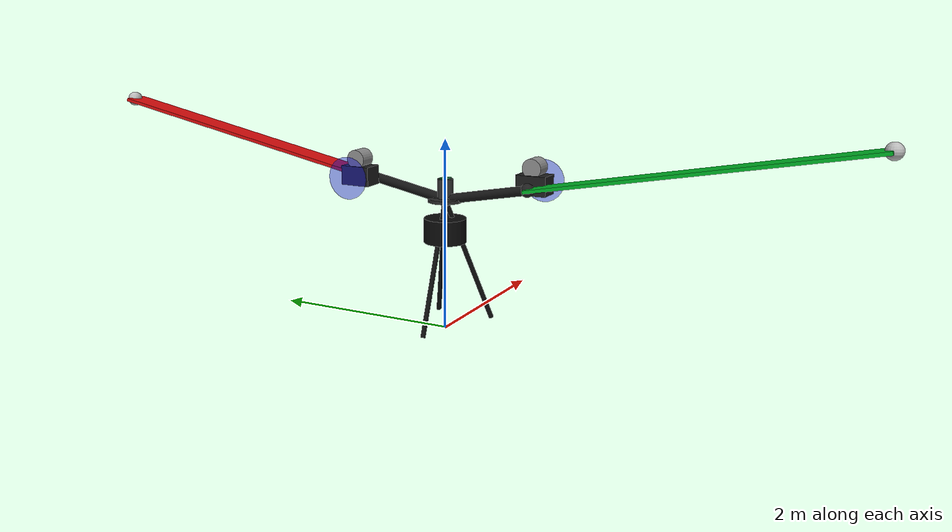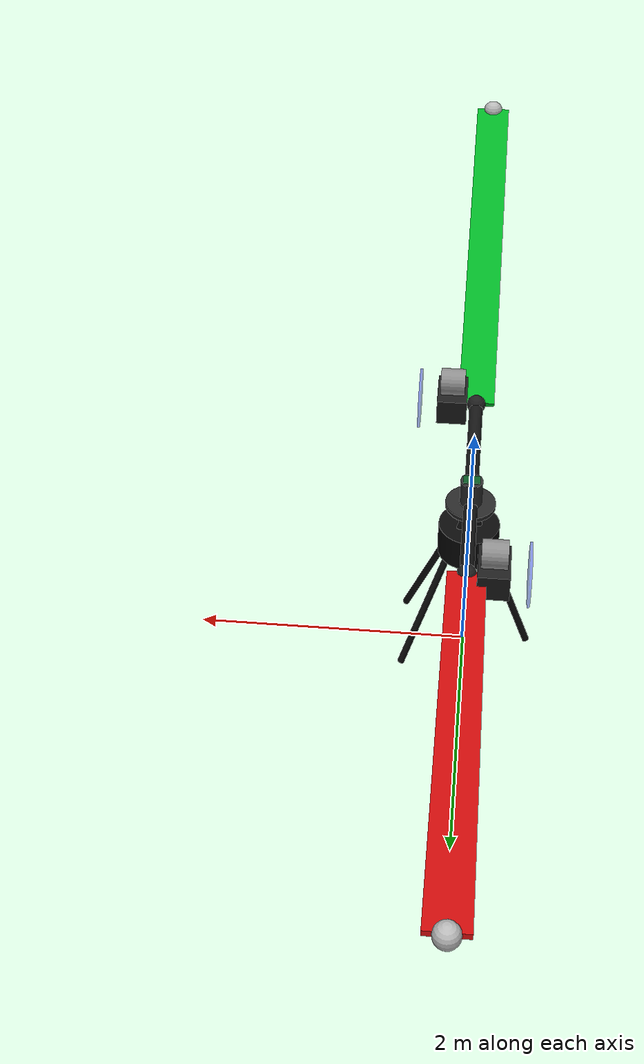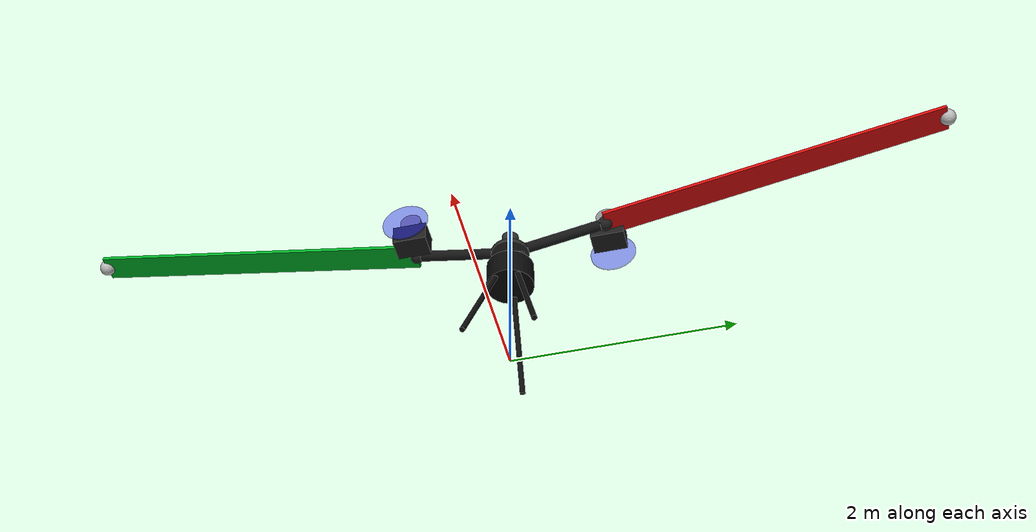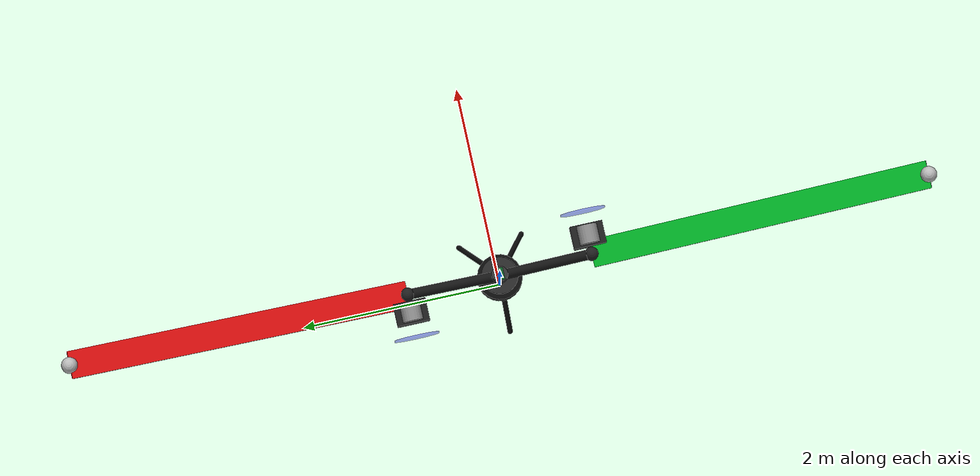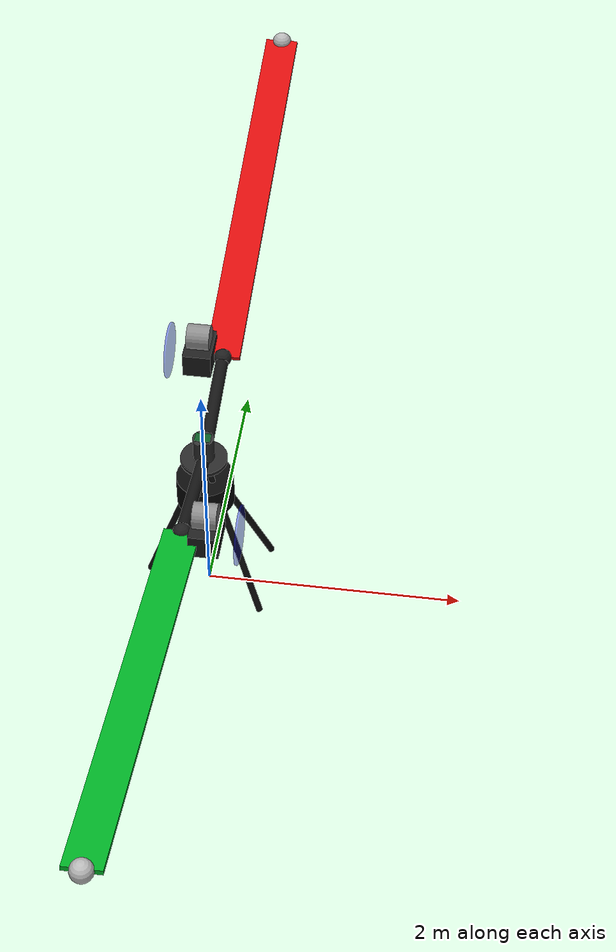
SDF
<?xml version="1.0"?>
<sdf version="1.6">
  <model name="rising_star">
    <!-- DOCUMENTATION HEADER                                                    -->
    <pose>0 0 0.86 0 0 0</pose>
    <static>false</static>

    <!-- base_link                                                              -->
    <link name="base_link">
      <pose>0 0 0 0 0 0</pose>
      <inertial>
        <mass>11.05</mass>
        <inertia>
          <ixx>8.0</ixx>
          <iyy>8.0</iyy>
          <izz>12.0</izz>
          <ixy>0.0</ixy>
          <ixz>0.0</ixz>
          <iyz>0.0</iyz>
        </inertia>
      </inertial>

      <!-- Tripod mast between base_link and rotor hub              -->
      <!-- This is fixed to base_link and visually supports rotor   -->
      <!-- area. It does not physically attach to spinning rotor_link. -->
      <collision name="tripod_mast_front_left_collision">
        <pose>0.2250 0.1600 -0.1600 0.000000 0.390870 -2.523448</pose>
        <geometry>
          <cylinder>
            <radius>0.0250</radius>
            <length>1.4493</length>
          </cylinder>
        </geometry>
        <surface>
          <contact>
            <ode>
              <min_depth>0.001</min_depth>
              <max_vel>0</max_vel>
            </ode>
          </contact>
          <friction>
            <ode />
          </friction>
        </surface>
      </collision>
      <collision name="tripod_mast_front_right_collision">
        <pose>0.2250 -0.1600 -0.1600 0.000000 0.390870 2.523448</pose>
        <geometry>
          <cylinder>
            <radius>0.0250</radius>
            <length>1.4493</length>
          </cylinder>
        </geometry>
        <surface>
          <contact>
            <ode>
              <min_depth>0.001</min_depth>
              <max_vel>0</max_vel>
            </ode>
          </contact>
          <friction>
            <ode />
          </friction>
        </surface>
      </collision>
      <collision name="tripod_mast_rear_collision">
        <pose>-0.2400 0.0000 -0.1600 0.000000 0.343969 0.000000</pose>
        <geometry>
          <cylinder>
            <radius>0.0250</radius>
            <length>1.4234</length>
          </cylinder>
        </geometry>
        <surface>
          <contact>
            <ode>
              <min_depth>0.001</min_depth>
              <max_vel>0</max_vel>
            </ode>
          </contact>
          <friction>
            <ode />
          </friction>
        </surface>
      </collision>

      <visual name="tripod_mast_front_left_visual">
        <pose>0.2250 0.1600 -0.1600 0.000000 0.390870 -2.523448</pose>
        <geometry>
          <cylinder>
            <radius>0.0250</radius>
            <length>1.4493</length>
          </cylinder>
        </geometry>
        <material>
          <ambient>0.05 0.05 0.05 1</ambient>
          <diffuse>0.05 0.05 0.05 1</diffuse>
        </material>
      </visual>
      <visual name="tripod_mast_front_right_visual">
        <pose>0.2250 -0.1600 -0.1600 0.000000 0.390870 2.523448</pose>
        <geometry>
          <cylinder>
            <radius>0.0250</radius>
            <length>1.4493</length>
          </cylinder>
        </geometry>
        <material>
          <ambient>0.05 0.05 0.05 1</ambient>
          <diffuse>0.05 0.05 0.05 1</diffuse>
        </material>
      </visual>
      <visual name="tripod_mast_rear_visual">
        <pose>-0.2400 0.0000 -0.1600 0.000000 0.343969 0.000000</pose>
        <geometry>
          <cylinder>
            <radius>0.0250</radius>
            <length>1.4234</length>
          </cylinder>
        </geometry>
        <material>
          <ambient>0.05 0.05 0.05 1</ambient>
          <diffuse>0.05 0.05 0.05 1</diffuse>
        </material>
      </visual>
      <visual name="tripod_mast_top_joint_visual">
        <pose>0.0000 0.0000 0.5500 0 0 0</pose>
        <geometry>
          <sphere>
            <radius>0.075</radius>
          </sphere>
        </geometry>
        <material>
          <ambient>0.18 0.18 0.18 1</ambient>
          <diffuse>0.18 0.18 0.18 1</diffuse>
        </material>
      </visual>

      <visual name="tripod_mast_top_plate_visual">
        <pose>0 0 0.51 0 0 0</pose>
        <geometry>
          <cylinder>
            <radius>0.18</radius>
            <length>0.035</length>
          </cylinder>
        </geometry>
        <material>
          <ambient>0.16 0.16 0.16 1</ambient>
          <diffuse>0.16 0.16 0.16 1</diffuse>
        </material>
      </visual>

      <!-- PX4 SITL sensor: IMU                                                -->
      <!--
        This sensor/plugin publishes IMU data for PX4 through the Gazebo
        mavlink_interface. The topic is /imu, matching imuSubTopic below.
      -->
      <sensor name="imu_sensor" type="imu">
        <always_on>true</always_on>
        <update_rate>100</update_rate>
        <visualize>false</visualize>
        <imu>
          <angular_velocity>
            <x>
              <noise type="gaussian">
                <mean>0.0</mean>
                <stddev>0.0003394</stddev>
                <bias_mean>0.0</bias_mean>
                <bias_stddev>3.8785e-05</bias_stddev>
              </noise>
            </x>
            <y>
              <noise type="gaussian">
                <mean>0.0</mean>
                <stddev>0.0003394</stddev>
                <bias_mean>0.0</bias_mean>
                <bias_stddev>3.8785e-05</bias_stddev>
              </noise>
            </y>
            <z>
              <noise type="gaussian">
                <mean>0.0</mean>
                <stddev>0.0003394</stddev>
                <bias_mean>0.0</bias_mean>
                <bias_stddev>3.8785e-05</bias_stddev>
              </noise>
            </z>
          </angular_velocity>
          <linear_acceleration>
            <x>
              <noise type="gaussian">
                <mean>0.0</mean>
                <stddev>0.004</stddev>
                <bias_mean>0.0</bias_mean>
                <bias_stddev>0.006</bias_stddev>
              </noise>
            </x>
            <y>
              <noise type="gaussian">
                <mean>0.0</mean>
                <stddev>0.004</stddev>
                <bias_mean>0.0</bias_mean>
                <bias_stddev>0.006</bias_stddev>
              </noise>
            </y>
            <z>
              <noise type="gaussian">
                <mean>0.0</mean>
                <stddev>0.004</stddev>
                <bias_mean>0.0</bias_mean>
                <bias_stddev>0.006</bias_stddev>
              </noise>
            </z>
          </linear_acceleration>
        </imu>
      </sensor>

    </link>

    <link name="/imu_link">
      <pose>0 0 0.694 0 0 0</pose>
      <inertial>
        <pose>0 0 0 0 0 0</pose>
        <mass>0.015</mass>
        <inertia>
          <ixx>0.00001</ixx>
          <ixy>0</ixy>
          <ixz>0</ixz>
          <iyy>0.00001</iyy>
          <iyz>0</iyz>
          <izz>0.00001</izz>
        </inertia>
      </inertial>
      <visual name="flight_controller_visual">
        <pose>0 0 0.035 0 0 0</pose>
        <geometry>
          <box>
            <size>0.12 0.08 0.025</size>
          </box>
        </geometry>
        <material>
          <ambient>0.02 0.18 0.08 1</ambient>
          <diffuse>0.04 0.35 0.14 1</diffuse>
          <specular>0.05 0.12 0.05 1</specular>
        </material>
      </visual>
    </link>

    <joint name="/imu_joint" type="fixed">
      <child>/imu_link</child>
      <!-- Rotor-hub mounted flight controller for SITL. The IMU link spins
           with rotor_link; mavlink_interface de-rotates it back into the
           body frame before sending data to stock PX4. -->
      <parent>rotor_link</parent>
    </joint>

    <!-- rotor_link                                                              -->
    <link name="rotor_link">
      <pose>0 0 0.694 0 0 0</pose>
      <inertial>
        <mass>8.0</mass>
        <inertia>
          <ixx>18.0</ixx>
          <iyy>18.0</iyy>
          <izz>35.0</izz>
          <ixy>0.0</ixy>
          <ixz>0.0</ixz>
          <iyz>0.0</iyz>
        </inertia>
      </inertial>

      <!-- Central rotor hub / teeter pivot housing. -->
      <collision name="rotor_hub_collision">
        <pose>0 0 -0.0889 0 0 0</pose>
        <geometry>
          <cylinder>
            <radius>0.08</radius>
            <length>0.25</length>
          </cylinder>
        </geometry>
      </collision>

      <visual name="rotor_hub_visual">
        <pose>0 0 -0.0889 0 0 0</pose>
        <geometry>
          <cylinder>
            <radius>0.08</radius>
            <length>0.25</length>
          </cylinder>
        </geometry>
        <material>
          <ambient>0.20 0.20 0.20 1</ambient>
          <diffuse>0.20 0.20 0.20 1</diffuse>
        </material>
      </visual>

      <!-- Central teeter pivot marker.
           This is the lower center point of the V shape:
           right beam endpoint 1 =  0.0000 0 -0.1778
           left  beam endpoint 1 =  0.0000 0 -0.1778
      -->
      <visual name="teeter_center_pivot_visual">
        <pose>0 0 -0.1778 0 0 0</pose>
        <geometry>
          <sphere>
            <radius>0.075</radius>
          </sphere>
        </geometry>
        <material>
          <ambient>0.10 0.10 0.10 1</ambient>
          <diffuse>0.10 0.10 0.10 1</diffuse>
        </material>
      </visual>

    </link>

    <!-- Physical teeter assembly.
         This link carries the blade visuals/collisions and rocks like a seesaw
         on a single hinge carried by the spinning rotor hub. -->
    <link name="teeter_beam_link">
      <pose>0 0 0.694 0 0 0</pose>
      <inertial>
        <mass>8.0</mass>
        <inertia>
          <ixx>18.0</ixx>
          <iyy>18.0</iyy>
          <izz>35.0</izz>
          <ixy>0.0</ixy>
          <ixz>0.0</ixz>
          <iyz>0.0</iyz>
        </inertia>
      </inertial>

      <!-- Left teeter beam: center pivot -> blade_2_visual root (+Y span) -->
      <collision name="teeter_beam_right_collision">
        <pose>0 0.4572 -0.0889 -1.37881010908 0 0</pose>
        <geometry>
          <cylinder>
            <radius>0.05</radius>
            <length>0.9316</length>
          </cylinder>
        </geometry>
      </collision>
      <visual name="teeter_beam_right_visual">
        <pose>0 0.4572 -0.0889 -1.37881010908 0 0</pose>
        <geometry>
          <cylinder>
            <radius>0.05</radius>
            <length>0.9316</length>
          </cylinder>
        </geometry>
        <material>
          <ambient>0.08 0.08 0.08 1</ambient>
          <diffuse>0.08 0.08 0.08 1</diffuse>
        </material>
      </visual>

      <!-- Right teeter beam: center pivot -> blade_1_visual root (-Y span) -->
      <collision name="teeter_beam_left_collision">
        <pose>0 -0.4572 -0.0889 1.37881010908 0 0</pose>
        <geometry>
          <cylinder>
            <radius>0.05</radius>
            <length>0.9316</length>
          </cylinder>
        </geometry>
      </collision>
      <visual name="teeter_beam_left_visual">
        <pose>0 -0.4572 -0.0889 1.37881010908 0 0</pose>
        <geometry>
          <cylinder>
            <radius>0.05</radius>
            <length>0.9316</length>
          </cylinder>
        </geometry>
        <material>
          <ambient>0.08 0.08 0.08 1</ambient>
          <diffuse>0.08 0.08 0.08 1</diffuse>
        </material>
      </visual>

      <!-- Optional root clamps to make the blade connection obvious. -->
      <visual name="blade_1_root_clamp_visual">
        <pose>0 -0.9144 0.0000 0 0 0</pose>
        <geometry>
          <sphere>
            <radius>0.07</radius>
          </sphere>
        </geometry>
        <material>
          <ambient>0.12 0.12 0.12 1</ambient>
          <diffuse>0.12 0.12 0.12 1</diffuse>
        </material>
      </visual>
      <visual name="blade_2_root_clamp_visual">
        <pose>0 0.9144 0.0000 0 0 0</pose>
        <geometry>
          <sphere>
            <radius>0.07</radius>
          </sphere>
        </geometry>
        <material>
          <ambient>0.12 0.12 0.12 1</ambient>
          <diffuse>0.12 0.12 0.12 1</diffuse>
        </material>
      </visual>

      <visual name="tip_weight_1_visual">
        <pose>0 -4.2055996207 0.6397443997 0 0 0</pose>
        <geometry>
          <sphere>
            <radius>0.08</radius>
          </sphere>
        </geometry>
      </visual>
      <visual name="tip_weight_2_visual">
        <pose>0 4.2055996207 0.6397443997 0 0 0</pose>
        <geometry>
          <sphere>
            <radius>0.08</radius>
          </sphere>
        </geometry>
      </visual>

      <!-- Visible GP-76 engine placeholders at 3 ft radius.
           These live on teeter_beam_link so the engines follow the blade beam. -->
      <visual name="gp76_engine_1_body_visual">
        <pose>0.18 -0.9144 0.03 0 0 -1.57079632679</pose>
        <geometry>
          <box>
            <size>0.32 0.22 0.20</size>
          </box>
        </geometry>
        <material>
          <ambient>0.12 0.12 0.12 1</ambient>
          <diffuse>0.12 0.12 0.12 1</diffuse>
        </material>
      </visual>
      <visual name="gp76_engine_1_cylinder_visual">
        <pose>0.18 -0.9144 0.20 1.57079632679 0 -1.57079632679</pose>
        <geometry>
          <cylinder>
            <radius>0.10</radius>
            <length>0.18</length>
          </cylinder>
        </geometry>
        <material>
          <ambient>0.55 0.55 0.55 1</ambient>
          <diffuse>0.55 0.55 0.55 1</diffuse>
        </material>
      </visual>
      <visual name="gp76_engine_1_prop_disc_visual">
        <pose>0.42 -0.9144 0.03 1.57079632679 0 -1.57079632679</pose>
        <geometry>
          <cylinder>
            <radius>0.22</radius>
            <length>0.015</length>
          </cylinder>
        </geometry>
        <material>
          <ambient>0.1 0.1 0.9 0.45</ambient>
          <diffuse>0.1 0.1 0.9 0.45</diffuse>
        </material>
      </visual>

      <visual name="gp76_engine_2_body_visual">
        <pose>-0.18 0.9144 0.03 0 0 1.57079632679</pose>
        <geometry>
          <box>
            <size>0.32 0.22 0.20</size>
          </box>
        </geometry>
        <material>
          <ambient>0.12 0.12 0.12 1</ambient>
          <diffuse>0.12 0.12 0.12 1</diffuse>
        </material>
      </visual>
      <visual name="gp76_engine_2_cylinder_visual">
        <pose>-0.18 0.9144 0.20 1.57079632679 0 1.57079632679</pose>
        <geometry>
          <cylinder>
            <radius>0.10</radius>
            <length>0.18</length>
          </cylinder>
        </geometry>
        <material>
          <ambient>0.55 0.55 0.55 1</ambient>
          <diffuse>0.55 0.55 0.55 1</diffuse>
        </material>
      </visual>
      <visual name="gp76_engine_2_prop_disc_visual">
        <pose>-0.42 0.9144 0.03 1.57079632679 0 1.57079632679</pose>
        <geometry>
          <cylinder>
            <radius>0.22</radius>
            <length>0.015</length>
          </cylinder>
        </geometry>
        <material>
          <ambient>0.1 0.1 0.9 0.45</ambient>
          <diffuse>0.1 0.1 0.9 0.45</diffuse>
        </material>
      </visual>
      <gravity>true</gravity>
      <self_collide>false</self_collide>
    </link>

    <link name="blade_1_pitch_link">
      <pose>0 -2.5599998103 1.0138721998 0 -0.191986 -1.57079632679</pose>
      <gravity>false</gravity>
      <self_collide>false</self_collide>
      <kinematic>true</kinematic>
      <inertial>
        <mass>0.001</mass>
        <inertia>
          <ixx>0.000001</ixx>
          <iyy>0.000001</iyy>
          <izz>0.000001</izz>
          <ixy>0.0</ixy>
          <ixz>0.0</ixz>
          <iyz>0.0</iyz>
        </inertia>
      </inertial>
      <visual name="blade_1_visual">
        <geometry>
          <box>
            <size>3.3528 0.2667 0.035</size>
          </box>
        </geometry>
        <material>
          <ambient>0.0 0.70 0.15 1</ambient>
          <diffuse>0.0 0.70 0.15 1</diffuse>
        </material>
      </visual>
    </link>

    <link name="blade_2_pitch_link">
      <pose>0 2.5599998103 1.0138721998 0 -0.191986 1.57079632679</pose>
      <gravity>false</gravity>
      <self_collide>false</self_collide>
      <kinematic>true</kinematic>
      <inertial>
        <mass>0.001</mass>
        <inertia>
          <ixx>0.000001</ixx>
          <iyy>0.000001</iyy>
          <izz>0.000001</izz>
          <ixy>0.0</ixy>
          <ixz>0.0</ixz>
          <iyz>0.0</iyz>
        </inertia>
      </inertial>
      <visual name="blade_2_visual">
        <geometry>
          <box>
            <size>3.3528 0.2667 0.035</size>
          </box>
        </geometry>
        <material>
          <ambient>0.85 0.05 0.05 1</ambient>
          <diffuse>0.85 0.05 0.05 1</diffuse>
        </material>
      </visual>
    </link>

    <!-- payload_link                                                            -->

    <link name="payload_link">
      <pose>0 0 0.194 0 0 0</pose>
      <inertial>
        <mass>0.5000000000</mass>
        <inertia>
          <ixx>0.00879482</ixx>
          <iyy>0.00879482</iyy>
          <izz>0.01221331</izz>
          <ixy>0.0</ixy>
          <ixz>0.0</ixz>
          <iyz>0.0</iyz>
        </inertia>
      </inertial>
      <collision name="payload_plate_collision">
        <geometry>
          <cylinder>
            <radius>0.2206625</radius>
            <length>0.254</length>
          </cylinder>
        </geometry>
        <surface>
          <contact>
            <ode>
              <min_depth>0.001</min_depth>
              <max_vel>0</max_vel>
            </ode>
          </contact>
          <friction>
            <ode />
          </friction>
        </surface>
      </collision>
      <visual name="payload_plate_visual">
        <geometry>
          <cylinder>
            <radius>0.2206625</radius>
            <length>0.254</length>
          </cylinder>
        </geometry>
        <material>
          <ambient>0.015 0.015 0.015 1</ambient>
          <diffuse>0.04 0.04 0.04 1</diffuse>
          <specular>0.12 0.12 0.12 1</specular>
        </material>
      </visual>
    </link>

    <joint name="payload_fixed_joint" type="fixed">
      <parent>base_link</parent>
      <child>payload_link</child>
    </joint>

    <joint name="main_rotor_joint" type="revolute">
      <parent>base_link</parent>
      <child>rotor_link</child>
      <pose>0 0 0.694 0 0 0</pose>
      <axis>
        <xyz>0 0 1</xyz>
        <limit>
          <lower>-1e16</lower>
          <upper>1e16</upper>
          <effort>10000</effort>
          <velocity>1000</velocity>
        </limit>
        <dynamics>
          <damping>0.01</damping>
          <friction>0.0</friction>
        </dynamics>
      </axis>
    </joint>

    <joint name="teeter_hinge_joint" type="revolute">
      <parent>rotor_link</parent>
      <child>teeter_beam_link</child>
      <pose>0 0 0.694 0 0 0</pose>
      <axis>
        <!-- Blade span is along rotor local Y, so the seesaw hinge axis is X. -->
        <xyz>1 0 0</xyz>
        <limit>
          <lower>-0.2617993878</lower>
          <upper>0.2617993878</upper>
          <effort>10000</effort>
          <velocity>3.14159265359</velocity>
        </limit>
        <dynamics>
          <damping>600.0</damping>
          <friction>0.0</friction>
        </dynamics>
      </axis>
    </joint>

    <plugin name="rising_star_plugin" filename="librising_star_plugin.so">
      <!-- baseLinkName:
           Name of the non-rotating vehicle body link. -->
      <baseLinkName>base_link</baseLinkName>
      <!-- rotorLinkName:
           Name of the simplified spinning rotor assembly. -->
      <rotorLinkName>rotor_link</rotorLinkName>
      <teeterBeamLinkName>teeter_beam_link</teeterBeamLinkName>
      <blade1PitchLinkName>blade_1_pitch_link</blade1PitchLinkName>
      <blade2PitchLinkName>blade_2_pitch_link</blade2PitchLinkName>
      <!-- payloadLinkName:
           Physical payload link. Its SDF inertial block is the payload physics. -->
      <payloadLinkName>payload_link</payloadLinkName>
      <!-- jointName:
           Revolute joint connecting base_link and rotor_link. -->
      <jointName>main_rotor_joint</jointName>
      <teeterHingeJointName>teeter_hinge_joint</teeterHingeJointName>

      <!-- Primary test variables -->
      <!-- targetRpm:
           If useEngineDynamics=false, this directly forces rotor RPM.
           If useEngineDynamics=true, this is only the initial RPM at spawn.
           Unit: rpm. -->
      <targetRpm>0.0</targetRpm>
      <payloadEnabled>true</payloadEnabled>
      <payloadMassLb>0.0</payloadMassLb>
      <payloadOffsetFromCogM>0 0 0.194</payloadOffsetFromCogM>
      <!-- Barbell plate dimensions used to calculate annular-cylinder inertia. -->
      <payloadOuterDiameterIn>17.375</payloadOuterDiameterIn>
      <payloadInnerDiameterIn>1.0</payloadInnerDiameterIn>
      <payloadThicknessIn>10.0</payloadThicknessIn>
      <!-- payloadDisabledScale:
           Used only for the disabled payload dummy inertia calculation.
           payloadEnabled=true intentionally ignores this value. -->
      <payloadDisabledScale>0.08</payloadDisabledScale>
      <!-- blade1PitchDeg:
           Pitch command for blade 1 in degrees.
           Design/reference value: 7.27 deg. -->
      <blade1PitchDeg>5.0</blade1PitchDeg>
      <blade2PitchDeg>5.0</blade2PitchDeg>

      <!-- Simple horizontal wind/body drag                                    -->
      <enableHorizontalWindDrag>true</enableHorizontalWindDrag>

      <windSubTopic>world_wind</windSubTopic>

      <bodyHorizontalDragCoefficient>1.1</bodyHorizontalDragCoefficient>
      <bodyHorizontalDragAreaM2>0.9</bodyHorizontalDragAreaM2>
      <payloadHorizontalDragCoefficient>1.1</payloadHorizontalDragCoefficient>
      <payloadHorizontalDragAreaM2>0.16</payloadHorizontalDragAreaM2>

      <!-- Wind drag debug:
           Prints wind and applied body/payload force vectors to the Gazebo
           terminal. Keep this off unless tuning the force scale. -->
      <printWindDragDebug>false</printWindDragDebug>
      <windDragDebugIntervalSec>1.0</windDragDebugIntervalSec>

      <!-- Rotor imbalance disturbance                                         -->
      <enableRotorImbalance>false</enableRotorImbalance>
      <!-- Force amplitude at rotorImbalanceReferenceRpm. Unit: N. -->
      <rotorImbalanceForceAtReferenceRpmN>5.0</rotorImbalanceForceAtReferenceRpmN>
      <!-- Reference RPM for the quadratic force scaling. -->
      <rotorImbalanceReferenceRpm>70.0</rotorImbalanceReferenceRpm>
      <!-- Phase offset of the imbalance force relative to plugin rotor azimuth. -->
      <rotorImbalancePhaseDeg>0.0</rotorImbalancePhaseDeg>
      <!-- Application point in base_link/model coordinates. The default is the
           main rotor hub height, so the lateral force also excites body moment. -->
      <rotorImbalanceApplicationPointM>0 0 0.694</rotorImbalanceApplicationPointM>
      <!-- Debug prints for applied imbalance force. -->
      <printRotorImbalanceDebug>false</printRotorImbalanceDebug>
      <rotorImbalanceDebugIntervalSec>1.0</rotorImbalanceDebugIntervalSec>

      <!-- Azimuth-based cyclic pitch                                          -->
      <useCyclicPitch>false</useCyclicPitch>

      <collectiveDeg>6.73</collectiveDeg>

      <rollCyclicDeg>0.0</rollCyclicDeg>

      <pitchCyclicDeg>0.0</pitchCyclicDeg>

      <!-- cyclicPhaseOffsetDeg:
           Phase tuning knob.
           Helicopter/rotor systems often need phase correction.
           Start at 0 deg, then tune sign and phase after observing response. -->
      <cyclicPhaseOffsetDeg>0.0</cyclicPhaseOffsetDeg>

      <cyclicAzimuthSource>as5600</cyclicAzimuthSource>
      <cyclicAzimuthZeroOffsetRad>0.0</cyclicAzimuthZeroOffsetRad>
      <!-- cyclicAzimuthDirection:
           Set to -1 if the sensor angle increases opposite the rotor model's
           positive azimuth direction. -->
      <cyclicAzimuthDirection>1</cyclicAzimuthDirection>

      <cyclicCommandFrame>world</cyclicCommandFrame>
      <swapCyclicInputs>false</swapCyclicInputs>
      <rollCyclicSign>1.0</rollCyclicSign>
      <pitchCyclicSign>1.0</pitchCyclicSign>

      <!-- Teeter dynamics                                                     -->
      <enableTeeterDynamics>true</enableTeeterDynamics>
      <!-- teeterInertiaKgm2:
           Effective inertia about the teeter hinge. Higher values slow teeter
           response; lower values make cyclic response sharper. -->
      <teeterInertiaKgm2>80.0</teeterInertiaKgm2>
      <!-- teeterDampingNmPerRadS:
           Hinge/flapping damping. Increase if teeter angle chatters or hits
           the +/- limit too aggressively. -->
      <teeterDampingNmPerRadS>600.0</teeterDampingNmPerRadS>
      <!-- teeterStiffnessNmPerRad:
           Optional centering stiffness. Real teeter hinges are close to free,
           so keep this at zero for first bring-up. -->
      <teeterStiffnessNmPerRad>0.0</teeterStiffnessNmPerRad>
      <!-- teeterMomentSign:
           Set to -1.0 if cyclic response is mirrored after enabling teeter
           dynamics. -->
      <teeterMomentSign>1.0</teeterMomentSign>
      <teeterRateLimitDegS>180.0</teeterRateLimitDegS>

      <!-- PX4 actuator bridge                                                 -->
      <!-- enablePx4ActuatorInput:
           true  = subscribe to PX4/Gazebo motor speed command topic.
           false = use only SDF/manual values.

           This is the first PX4 integration step.
      -->
      <enablePx4ActuatorInput>true</enablePx4ActuatorInput>

      <px4ActuatorTopic>~/rising_star/gazebo/command/motor_speed</px4ActuatorTopic>

      <px4InputMode>motor_speed</px4InputMode>
      <px4PitchInputMode>blade_pitch</px4PitchInputMode>

      <px4MotorSpeedScale>1000.0</px4MotorSpeedScale>

      <px4ThrottleZeroRaw>0.0</px4ThrottleZeroRaw>
      <px4ThrottleFullRaw>1000.0</px4ThrottleFullRaw>
      <px4CollectiveZeroRaw>0.0</px4CollectiveZeroRaw>
      <px4CollectiveFullRaw>1000.0</px4CollectiveFullRaw>

      <!-- px4CommandTimeoutSec:
           If no PX4 actuator message is received for this many seconds,
           plugin falls back to SDF/manual command values. -->
      <px4CommandTimeoutSec>0.5</px4CommandTimeoutSec>

      <!-- PX4 input debug:
           Prints raw motor_speed, normalized values, and mapped command values
           to the Gazebo terminal so QGC stick inputs can be inspected live. -->
      <printPx4InputDebug>false</printPx4InputDebug>
      <px4InputDebugIntervalSec>0.2</px4InputDebugIntervalSec>
      <!-- Teeter state debug:
           Prints RPM, blade pitch, teeter angle/rate, and lift to
           the Gazebo terminal. -->
      <printTeeterStateDebug>false</printTeeterStateDebug>
      <teeterStateDebugIntervalSec>1.0</teeterStateDebugIntervalSec>

      <!-- Engine dynamics -->
      <useEngineDynamics>true</useEngineDynamics>
      <engineThrottle>0.0</engineThrottle>
      <!-- engineRadiusFt:
           Distance from rotor center to each engine thrust line.
           Given design value: 3 ft.
           This is the torque arm for engine thrust. -->
      <engineRadiusFt>3.0</engineRadiusFt>
      <engineThrustLbEach>54.0</engineThrustLbEach>
      <!-- Step 1/2 tuning: increase rotorInertiaKgm2 for slower spool-up, decrease for faster
      spool-up. -->
      <rotorInertiaKgm2>45.0</rotorInertiaKgm2>
      <kTorque>0.831</kTorque>

      <visualInspectionMode>false</visualInspectionMode>
      <visualInspectionBladePitchDeg>20.0</visualInspectionBladePitchDeg>
      <visualInspectionRotorAzimuthDeg>0.0</visualInspectionRotorAzimuthDeg>
      <visualInspectionTeeterDeg>0.0</visualInspectionTeeterDeg>
      <updateBladePitchVisualsDuringFlight>true</updateBladePitchVisualsDuringFlight>

      <!-- Fixed constants -->
      <!-- emptyWeightLb:
           Target empty vehicle weight.
           Given design value: 42 lb.
           Current SDF inertial masses approximate this empty weight. -->
      <emptyWeightLb>42.0</emptyWeightLb>
      <kThrust>3.69</kThrust>
      <!-- maxRpm:
           Maximum rotor RPM.
           Given design value: 220 rpm.
           Engine dynamics clamp rotor speed to this value. -->
      <maxRpm>220.0</maxRpm>

      <!-- Pitch model -->
      <!-- hoverPitchDeg:
           Reference pitch where pitch_factor = 1.0.
           Given design condition: 440 lb at 7.27 deg. -->
      <hoverPitchDeg>7.27</hoverPitchDeg>
      <!-- zeroLiftPitchDeg:
           Simple linear model zero-lift reference pitch.
           Tuning parameter, not exact airfoil zero-lift angle. -->
      <zeroLiftPitchDeg>1.0</zeroLiftPitchDeg>
      <minPitchDeg>-4.0</minPitchDeg>
      <!-- maxPitchDeg:
           Upper blade pitch clamp. Keep this above the collective upper bound
           so cyclic authority is not clipped during lateral control. -->
      <maxPitchDeg>22.0</maxPitchDeg>

      <useBladeElementLift>true</useBladeElementLift>
      <airDensityKgM3>1.225</airDensityKgM3>
      <bladeLiftSlopePerRad>6.28318530718</bladeLiftSlopePerRad>
      <bladeElementSections>12</bladeElementSections>
      <bladeElementLiftScale>0.0</bladeElementLiftScale>

      <preserveCyclicMeanLift>true</preserveCyclicMeanLift>

      <!-- Rotor metadata -->
      <!-- rotorRadiusFt:
           Nominal rotor radius from center to blade tip:
             3 ft beam half-span + 11 ft repaired blade = 14 ft.
           The nominal rotor diameter is therefore 28 ft. -->
      <rotorRadiusFt>14.0</rotorRadiusFt>
      <!-- hubRadiusFt:
           Teeter-beam half-span / blade start radius.
           The v1 beam is 6 ft root-to-root, so this is 3 ft. -->
      <hubRadiusFt>3.0</hubRadiusFt>
      <!-- numBlades:
           Number of large rotor blades. -->
      <numBlades>2</numBlades>
      <!-- bladeChordIn:
           Blade chord.
           Given value: 10.5 inches. -->
      <bladeChordIn>10.5</bladeChordIn>
      <!-- airfoil:
           Airfoil metadata.
           Not used yet in current equivalent lift model.
           Future blade-element model should use this. -->
      <airfoil>NACA23015</airfoil>
      <!-- tipSpeedFps:
           Tip speed at 220 rpm.
           A 14 ft radius gives approximately 322.5 ft/s. -->
      <tipSpeedFps>322.5</tipSpeedFps>
      <!-- designGrossWeightLb:
           Design gross weight at 7.27 deg collective.
           Given value: 440 lb. -->
      <designGrossWeightLb>440.0</designGrossWeightLb>
      <!-- tipWeightLb:
           Tip weight per blade.
           Given value: 2.53 lb. -->
      <tipWeightLb>2.53</tipWeightLb>
      <!-- bladeSpanwiseDensityLbFt:
           Approximate blade spanwise density.
           Given value: about 0.3 lb/ft. -->
      <bladeSpanwiseDensityLbFt>0.3</bladeSpanwiseDensityLbFt>
      <!-- forwardSpeedMph:
           Design forward speed metadata.
           Not used yet in current force model. -->
      <forwardSpeedMph>20.0</forwardSpeedMph>
      <!-- rotorTwistDeg:
           Blade twist metadata.
           Given value: 6 deg linear twist.
           Future blade-element model should use this. -->
      <rotorTwistDeg>6.0</rotorTwistDeg>
      <!-- rotorPlaneHeightFt:
           Rotor plane height above ground.
           Given value: 5 ft = 1.524 m. -->
      <rotorPlaneHeightFt>5.0</rotorPlaneHeightFt>
      <!-- teeterAngleLimitDeg:
           Physical teeter hinge range: +/- 15 deg. The SDF revolute-joint
           limits above use the same value in radians. -->
      <teeterAngleLimitDeg>15.0</teeterAngleLimitDeg>
      <preConeAngleDeg>11.0</preConeAngleDeg>
      <!-- gyroPrecessionTorqueFtLb:
           Gyroscopic precession torque metadata.
           Not directly used yet. -->
      <gyroPrecessionTorqueFtLb>262.0</gyroPrecessionTorqueFtLb>
      <!-- torqueRequiredFtLb:
           Rotor torque required at design condition.
           Used to justify kTorque. -->
      <torqueRequiredFtLb>325.0</torqueRequiredFtLb>
      <!-- equivalentShaftHp:
           Equivalent shaft horsepower metadata.
           Given value: 16 hp. Used with propulsiveEfficiency as the engine
           power cap for rotor drive torque. -->
      <equivalentShaftHp>16.0</equivalentShaftHp>
      <!-- propulsiveEfficiency:
           Design assumption used to convert equivalentShaftHp into available
           rotor power. -->
      <propulsiveEfficiency>0.85</propulsiveEfficiency>
      <!-- numEngines:
           Number of GP-76 engines. -->
      <numEngines>2</numEngines>
      <!-- engineHpEach:
           GP-76 power metadata.
           Current torque model uses thrust and radius, not HP curve. -->
      <engineHpEach>8.0</engineHpEach>
      <!-- mainBladeSparOdMm:
           Main blade spar outer diameter metadata. -->
      <mainBladeSparOdMm>30.0</mainBladeSparOdMm>
      <!-- mainBladeSparIdMm:
           Main blade spar inner diameter metadata. -->
      <mainBladeSparIdMm>28.0</mainBladeSparIdMm>
    </plugin>

    <include>
      <uri>model://rising_star_gps</uri>
      <pose>0 0 0.894 0 0 0</pose>
      <name>gps0</name>
    </include>
    <joint name="gps0_joint" type="fixed">
      <child>gps0::link</child>
      <parent>teeter_beam_link</parent>
    </joint>

    <plugin name="groundtruth_plugin" filename="libgazebo_groundtruth_plugin.so">
      <robotNamespace />
    </plugin>
    <plugin name="magnetometer_plugin" filename="libgazebo_magnetometer_plugin.so">
      <robotNamespace />
      <pubRate>100</pubRate>
      <noiseDensity>0.0004</noiseDensity>
      <randomWalk>6.4e-06</randomWalk>
      <biasCorrelationTime>600</biasCorrelationTime>
      <magTopic>/mag</magTopic>
      <linkName>/imu_link</linkName>
    </plugin>
    <plugin name="barometer_plugin" filename="libgazebo_barometer_plugin.so">
      <robotNamespace />
      <pubRate>50</pubRate>
      <baroTopic>/baro</baroTopic>
      <baroDriftPaPerSec>0</baroDriftPaPerSec>
    </plugin>
    <plugin name="mavlink_interface" filename="libgazebo_mavlink_interface.so">
      <robotNamespace />
      <imuSubTopic>/imu</imuSubTopic>
      <magSubTopic>/mag</magSubTopic>
      <baroSubTopic>/baro</baroSubTopic>
      <mavlink_addr>INADDR_ANY</mavlink_addr>
      <mavlink_tcp_port>4560</mavlink_tcp_port>
      <mavlink_udp_port>14560</mavlink_udp_port>
      <serialEnabled>0</serialEnabled>
      <serialDevice>/dev/ttyACM0</serialDevice>
      <baudRate>921600</baudRate>
      <qgc_addr>INADDR_ANY</qgc_addr>
      <qgc_udp_port>14550</qgc_udp_port>
      <sdk_addr>INADDR_ANY</sdk_addr>
      <sdk_udp_port>14540</sdk_udp_port>
      <hil_mode>0</hil_mode>
      <hil_state_level>0</hil_state_level>
      <send_vision_estimation>0</send_vision_estimation>
      <send_odometry>1</send_odometry>
      <enable_lockstep>1</enable_lockstep>
      <derotateImuToBaseLink>false</derotateImuToBaseLink>
      <derotateImuBaseLinkName>base_link</derotateImuBaseLinkName>
      <derotateImuSensorLinkName>/imu_link</derotateImuSensorLinkName>
      <derotateImuUseFakeAs5600>false</derotateImuUseFakeAs5600>
      <publishFakeAs5600>true</publishFakeAs5600>
      <fakeAs5600ZeroOffsetRad>0.0</fakeAs5600ZeroOffsetRad>
      <fakeAs5600Direction>1</fakeAs5600Direction>
      <fakeAs5600RateLpfHz>30.0</fakeAs5600RateLpfHz>
      <fakeAs5600UlogIntervalSec>0.005</fakeAs5600UlogIntervalSec>
      <use_tcp>1</use_tcp>
      <motorSpeedCommandPubTopic>/gazebo/command/motor_speed</motorSpeedCommandPubTopic>
      <control_channels>
        <channel name="engine_throttle">
          <input_index>0</input_index>
          <input_offset>0</input_offset>
          <input_scaling>1000</input_scaling>
          <zero_position_disarmed>0</zero_position_disarmed>
          <zero_position_armed>0</zero_position_armed>
          <joint_control_type>velocity</joint_control_type>
        </channel>
        <channel name="engine_throttle_b">
          <input_index>1</input_index>
          <input_offset>0</input_offset>
          <input_scaling>1000</input_scaling>
          <zero_position_disarmed>0</zero_position_disarmed>
          <zero_position_armed>0</zero_position_armed>
          <joint_control_type>velocity</joint_control_type>
        </channel>
        <channel name="blade_1_pitch_servo">
          <input_index>2</input_index>
          <input_offset>1</input_offset>
          <input_scaling>500</input_scaling>
          <zero_position_disarmed>0</zero_position_disarmed>
          <zero_position_armed>0</zero_position_armed>
          <joint_control_type>velocity</joint_control_type>
        </channel>
        <channel name="blade_2_pitch_servo">
          <input_index>3</input_index>
          <input_offset>1</input_offset>
          <input_scaling>500</input_scaling>
          <zero_position_disarmed>0</zero_position_disarmed>
          <zero_position_armed>0</zero_position_armed>
          <joint_control_type>velocity</joint_control_type>
        </channel>
      </control_channels>
    </plugin>
    <plugin name="rotors_gazebo_imu_plugin" filename="libgazebo_imu_plugin.so">
      <robotNamespace />
      <linkName>/imu_link</linkName>
      <imuTopic>/imu</imuTopic>
      <enableEngineImuVibration>false</enableEngineImuVibration>
      <engineImuVibrationGateByMotorCommand>true</engineImuVibrationGateByMotorCommand>
      <engineImuVibrationMotorCommandTopic>~/rising_star/gazebo/command/motor_speed</engineImuVibrationMotorCommandTopic>
      <engineImuVibrationMotorSpeedScale>1000.0</engineImuVibrationMotorSpeedScale>
      <engineImuVibrationMotorThreshold>0.05</engineImuVibrationMotorThreshold>
      <engineImuVibrationCommandTimeoutSec>0.5</engineImuVibrationCommandTimeoutSec>
      <engineImuVibrationStartSec>3.0</engineImuVibrationStartSec>
      <engineImuVibrationRampSec>2.0</engineImuVibrationRampSec>
      <engineImuVibrationEnvelopeAmplitude>0.1</engineImuVibrationEnvelopeAmplitude>
      <engineImuVibrationEnvelopePeriodSec>12.0</engineImuVibrationEnvelopePeriodSec>
      <engineImuVibrationEnvelopePhaseDeg>0.0</engineImuVibrationEnvelopePhaseDeg>
      <engineImuVibrationFreq1Hz>52.0</engineImuVibrationFreq1Hz>
      <engineImuVibrationFreq2Hz>69.0</engineImuVibrationFreq2Hz>
      <engineImuVibrationFreq3Hz>0.0</engineImuVibrationFreq3Hz>
      <engineImuVibrationFreq4Hz>0.0</engineImuVibrationFreq4Hz>
      <engineImuVibrationAccelAmp1Mps2>110 110 14</engineImuVibrationAccelAmp1Mps2>
      <engineImuVibrationAccelAmp2Mps2>90 90 14</engineImuVibrationAccelAmp2Mps2>
      <engineImuVibrationAccelAmp3Mps2>0 0 0</engineImuVibrationAccelAmp3Mps2>
      <engineImuVibrationAccelAmp4Mps2>0 0 0</engineImuVibrationAccelAmp4Mps2>
      <engineImuVibrationGyroAmp1Radps>0.30 0.30 0.04</engineImuVibrationGyroAmp1Radps>
      <engineImuVibrationGyroAmp2Radps>0.25 0.25 0.05</engineImuVibrationGyroAmp2Radps>
      <engineImuVibrationGyroAmp3Radps>0.00 0.00 0.00</engineImuVibrationGyroAmp3Radps>
      <engineImuVibrationGyroAmp4Radps>0.00 0.00 0.00</engineImuVibrationGyroAmp4Radps>
      <engineImuVibrationAccelPhase1Deg>0.0 90.0 0.0</engineImuVibrationAccelPhase1Deg>
      <engineImuVibrationAccelPhase2Deg>45.0 135.0 90.0</engineImuVibrationAccelPhase2Deg>
      <engineImuVibrationAccelPhase3Deg>0.0 0.0 0.0</engineImuVibrationAccelPhase3Deg>
      <engineImuVibrationAccelPhase4Deg>0.0 0.0 0.0</engineImuVibrationAccelPhase4Deg>
      <engineImuVibrationGyroPhase1Deg>0.0 90.0 0.0</engineImuVibrationGyroPhase1Deg>
      <engineImuVibrationGyroPhase2Deg>45.0 135.0 90.0</engineImuVibrationGyroPhase2Deg>
      <engineImuVibrationGyroPhase3Deg>0.0 0.0 0.0</engineImuVibrationGyroPhase3Deg>
      <engineImuVibrationGyroPhase4Deg>0.0 0.0 0.0</engineImuVibrationGyroPhase4Deg>
      <gyroscopeNoiseDensity>0.00018665</gyroscopeNoiseDensity>
      <gyroscopeRandomWalk>3.8785e-05</gyroscopeRandomWalk>
      <gyroscopeBiasCorrelationTime>1000.0</gyroscopeBiasCorrelationTime>
      <gyroscopeTurnOnBiasSigma>0.0087</gyroscopeTurnOnBiasSigma>
      <accelerometerNoiseDensity>0.00186</accelerometerNoiseDensity>
      <accelerometerRandomWalk>0.006</accelerometerRandomWalk>
      <accelerometerBiasCorrelationTime>300.0</accelerometerBiasCorrelationTime>
      <accelerometerTurnOnBiasSigma>0.196</accelerometerTurnOnBiasSigma>
    </plugin>

  </model>

</sdf>

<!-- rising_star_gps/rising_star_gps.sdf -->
<sdf version="1.6">
  <model name="rising_star_gps">
    <link name="link">
      <pose>0 0 0 0 0 0</pose>
      <inertial>
        <pose>0 0 0 0 0 0</pose>
        <mass>0.015</mass>
        <inertia>
          <ixx>1e-05</ixx>
          <ixy>0</ixy>
          <ixz>0</ixz>
          <iyy>1e-05</iyy>
          <iyz>0</iyz>
          <izz>1e-05</izz>
        </inertia>
      </inertial>
      <visual name="visual">
        <geometry>
          <cylinder>
            <radius>0.01</radius>
            <length>0.002</length>
          </cylinder>
        </geometry>
        <material>
          <script>
            <name>Gazebo/Black</name>
          </script>
        </material>
      </visual>
      <sensor name="gps" type="gps">
        <pose>0 0 0 0 0 0</pose>
        <!-- PX4 receives GPS samples at this rate. Faster teeter/rotor motion can alias into
             the reported GPS position and velocity because the plugin samples discretely. -->
        <update_rate>5.0</update_rate>
        <always_on>true</always_on>
        <visualize>false</visualize>
        <plugin name="gps_plugin" filename="libgazebo_gps_plugin.so">
          <robotNamespace></robotNamespace>
          <useParentLinkPose>false</useParentLinkPose>
          <gpsNoise>false</gpsNoise>
          <!-- Slow random-walk drift of the horizontal GPS position bias. -->
          <gpsXYRandomWalk>2.0</gpsXYRandomWalk>
          <!-- Slow random-walk drift of the vertical GPS position bias. -->
          <gpsZRandomWalk>4.0</gpsZRandomWalk>
          <!-- Instant horizontal GPS position white noise. -->
          <gpsXYNoiseDensity>2.0e-4</gpsXYNoiseDensity>
          <!-- Instant vertical GPS position white noise. -->
          <gpsZNoiseDensity>4.0e-4</gpsZNoiseDensity>
          <!-- Instant horizontal GPS velocity white noise; this mainly shows up in vel_n/vel_e. -->
          <gpsVXYNoiseDensity>0.2</gpsVXYNoiseDensity>
          <!-- Instant vertical GPS velocity white noise; this mainly shows up in vel_d. -->
          <gpsVZNoiseDensity>0.4</gpsVZNoiseDensity>
        </plugin>
      </sensor>
    </link>
  </model>
</sdf>
